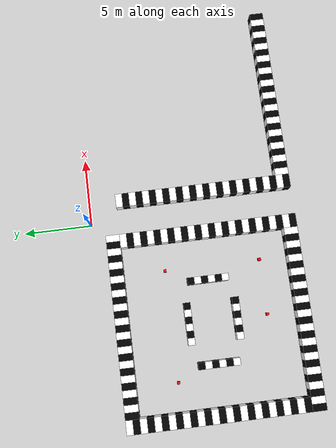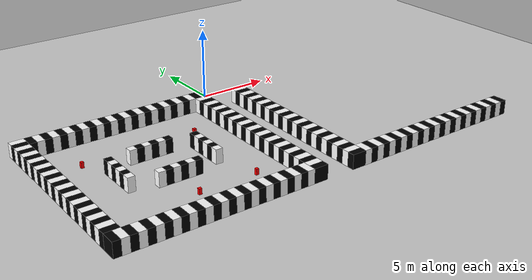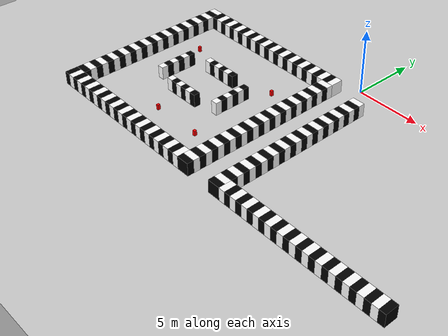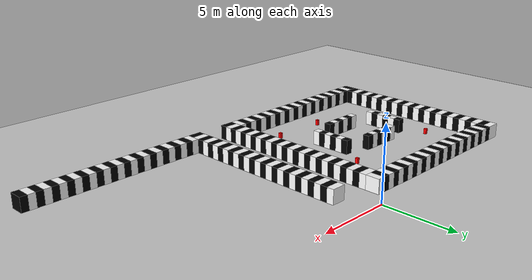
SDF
<sdf version="1.9">
 <world name="default">
  <model name="ground_plane">
   <static>true</static>
   <link name="link">
    <collision name="collision">
     <geometry><plane><normal>0 0 1</normal><size>100 100</size></plane></geometry>
    </collision>
    <visual name="visual">
     <geometry><plane><normal>0 0 1</normal><size>100 100</size></plane></geometry>
     <material>
      <ambient>0.8 0.8 0.8 1</ambient>
      <diffuse>0.8 0.8 0.8 1</diffuse>
      <specular>0.8 0.8 0.8 1</specular>
     </material>
    </visual>
   </link>
  </model>
  <model name="env1wall1">
   <static>true</static>
   <link name="link">
    <collision name="collision1">
     <geometry>
      <polyline>
       <point>-2 -2</point>
       <point>-1 -2</point>
       <point>-1 -15</point>
       <point>-2 -15</point>
       <height>1</height>
      </polyline>
     </geometry>
    </collision>
    <visual name="s1">
     <pose>-1.5 -2.25 0.5 0 0 0</pose>
     <geometry><box><size>1 0.5 1</size></box></geometry>
     <material><ambient>1 1 1 1</ambient><diffuse>1 1 1 1</diffuse></material>
    </visual>
    <visual name="s2">
     <pose>-1.5 -2.75 0.5 0 0 0</pose>
     <geometry><box><size>1 0.5 1</size></box></geometry>
     <material><ambient>0 0 0 1</ambient><diffuse>0 0 0 1</diffuse></material>
    </visual>
    <visual name="s3">
     <pose>-1.5 -3.25 0.5 0 0 0</pose>
     <geometry><box><size>1 0.5 1</size></box></geometry>
     <material><ambient>1 1 1 1</ambient><diffuse>1 1 1 1</diffuse></material>
    </visual>
    <visual name="s4">
     <pose>-1.5 -3.75 0.5 0 0 0</pose>
     <geometry><box><size>1 0.5 1</size></box></geometry>
     <material><ambient>0 0 0 1</ambient><diffuse>0 0 0 1</diffuse></material>
    </visual>
    <visual name="s5">
     <pose>-1.5 -4.25 0.5 0 0 0</pose>
     <geometry><box><size>1 0.5 1</size></box></geometry>
     <material><ambient>1 1 1 1</ambient><diffuse>1 1 1 1</diffuse></material>
    </visual>
    <visual name="s6">
     <pose>-1.5 -4.75 0.5 0 0 0</pose>
     <geometry><box><size>1 0.5 1</size></box></geometry>
     <material><ambient>0 0 0 1</ambient><diffuse>0 0 0 1</diffuse></material>
    </visual>
    <visual name="s7">
     <pose>-1.5 -5.25 0.5 0 0 0</pose>
     <geometry><box><size>1 0.5 1</size></box></geometry>
     <material><ambient>1 1 1 1</ambient><diffuse>1 1 1 1</diffuse></material>
    </visual>
    <visual name="s8">
     <pose>-1.5 -5.75 0.5 0 0 0</pose>
     <geometry><box><size>1 0.5 1</size></box></geometry>
     <material><ambient>0 0 0 1</ambient><diffuse>0 0 0 1</diffuse></material>
    </visual>
    <visual name="s9">
     <pose>-1.5 -6.25 0.5 0 0 0</pose>
     <geometry><box><size>1 0.5 1</size></box></geometry>
     <material><ambient>1 1 1 1</ambient><diffuse>1 1 1 1</diffuse></material>
    </visual>
    <visual name="s10">
     <pose>-1.5 -6.75 0.5 0 0 0</pose>
     <geometry><box><size>1 0.5 1</size></box></geometry>
     <material><ambient>0 0 0 1</ambient><diffuse>0 0 0 1</diffuse></material>
    </visual>
    <visual name="s11">
     <pose>-1.5 -7.25 0.5 0 0 0</pose>
     <geometry><box><size>1 0.5 1</size></box></geometry>
     <material><ambient>1 1 1 1</ambient><diffuse>1 1 1 1</diffuse></material>
    </visual>
    <visual name="s12">
     <pose>-1.5 -7.75 0.5 0 0 0</pose>
     <geometry><box><size>1 0.5 1</size></box></geometry>
     <material><ambient>0 0 0 1</ambient><diffuse>0 0 0 1</diffuse></material>
    </visual>
    <visual name="s13">
     <pose>-1.5 -8.25 0.5 0 0 0</pose>
     <geometry><box><size>1 0.5 1</size></box></geometry>
     <material><ambient>1 1 1 1</ambient><diffuse>1 1 1 1</diffuse></material>
    </visual>
    <visual name="s14">
     <pose>-1.5 -8.75 0.5 0 0 0</pose>
     <geometry><box><size>1 0.5 1</size></box></geometry>
     <material><ambient>0 0 0 1</ambient><diffuse>0 0 0 1</diffuse></material>
    </visual>
    <visual name="s15">
     <pose>-1.5 -9.25 0.5 0 0 0</pose>
     <geometry><box><size>1 0.5 1</size></box></geometry>
     <material><ambient>1 1 1 1</ambient><diffuse>1 1 1 1</diffuse></material>
    </visual>
    <visual name="s16">
     <pose>-1.5 -9.75 0.5 0 0 0</pose>
     <geometry><box><size>1 0.5 1</size></box></geometry>
     <material><ambient>0 0 0 1</ambient><diffuse>0 0 0 1</diffuse></material>
    </visual>
    <visual name="s17">
     <pose>-1.5 -10.25 0.5 0 0 0</pose>
     <geometry><box><size>1 0.5 1</size></box></geometry>
     <material><ambient>1 1 1 1</ambient><diffuse>1 1 1 1</diffuse></material>
    </visual>
    <visual name="s18">
     <pose>-1.5 -10.75 0.5 0 0 0</pose>
     <geometry><box><size>1 0.5 1</size></box></geometry>
     <material><ambient>0 0 0 1</ambient><diffuse>0 0 0 1</diffuse></material>
    </visual>
    <visual name="s19">
     <pose>-1.5 -11.25 0.5 0 0 0</pose>
     <geometry><box><size>1 0.5 1</size></box></geometry>
     <material><ambient>1 1 1 1</ambient><diffuse>1 1 1 1</diffuse></material>
    </visual>
    <visual name="s20">
     <pose>-1.5 -11.75 0.5 0 0 0</pose>
     <geometry><box><size>1 0.5 1</size></box></geometry>
     <material><ambient>0 0 0 1</ambient><diffuse>0 0 0 1</diffuse></material>
    </visual>
    <visual name="s21">
     <pose>-1.5 -12.25 0.5 0 0 0</pose>
     <geometry><box><size>1 0.5 1</size></box></geometry>
     <material><ambient>1 1 1 1</ambient><diffuse>1 1 1 1</diffuse></material>
    </visual>
    <visual name="s22">
     <pose>-1.5 -12.75 0.5 0 0 0</pose>
     <geometry><box><size>1 0.5 1</size></box></geometry>
     <material><ambient>0 0 0 1</ambient><diffuse>0 0 0 1</diffuse></material>
    </visual>
    <visual name="s23">
     <pose>-1.5 -13.25 0.5 0 0 0</pose>
     <geometry><box><size>1 0.5 1</size></box></geometry>
     <material><ambient>1 1 1 1</ambient><diffuse>1 1 1 1</diffuse></material>
    </visual>
    <visual name="s24">
     <pose>-1.5 -13.75 0.5 0 0 0</pose>
     <geometry><box><size>1 0.5 1</size></box></geometry>
     <material><ambient>0 0 0 1</ambient><diffuse>0 0 0 1</diffuse></material>
    </visual>
    <visual name="s25">
     <pose>-1.5 -14.25 0.5 0 0 0</pose>
     <geometry><box><size>1 0.5 1</size></box></geometry>
     <material><ambient>1 1 1 1</ambient><diffuse>1 1 1 1</diffuse></material>
    </visual>
    <visual name="s26">
     <pose>-1.5 -14.75 0.5 0 0 0</pose>
     <geometry><box><size>1 0.5 1</size></box></geometry>
     <material><ambient>0 0 0 1</ambient><diffuse>0 0 0 1</diffuse></material>
    </visual>
   </link>
  </model>
  <model name="env1wall2">
   <static>true</static>
   <link name="link">
    <collision name="collision1">
     <geometry>
      <polyline>
       <point>-2 -14</point>
       <point>-2 -15</point>
       <point>-15 -15</point>
       <point>-15 -14</point>
       <height>1</height>
      </polyline>
     </geometry>
    </collision>
    <visual name="s1">
     <pose>-2.25 -14.5 0.5 0 0 0</pose>
     <geometry><box><size>0.5 1 1</size></box></geometry>
     <material><ambient>1 1 1 1</ambient><diffuse>1 1 1 1</diffuse></material>
    </visual>
    <visual name="s2">
     <pose>-2.75 -14.5 0.5 0 0 0</pose>
     <geometry><box><size>0.5 1 1</size></box></geometry>
     <material><ambient>0 0 0 1</ambient><diffuse>0 0 0 1</diffuse></material>
    </visual>
    <visual name="s3">
     <pose>-3.25 -14.5 0.5 0 0 0</pose>
     <geometry><box><size>0.5 1 1</size></box></geometry>
     <material><ambient>1 1 1 1</ambient><diffuse>1 1 1 1</diffuse></material>
    </visual>
    <visual name="s4">
     <pose>-3.75 -14.5 0.5 0 0 0</pose>
     <geometry><box><size>0.5 1 1</size></box></geometry>
     <material><ambient>0 0 0 1</ambient><diffuse>0 0 0 1</diffuse></material>
    </visual>
    <visual name="s5">
     <pose>-4.25 -14.5 0.5 0 0 0</pose>
     <geometry><box><size>0.5 1 1</size></box></geometry>
     <material><ambient>1 1 1 1</ambient><diffuse>1 1 1 1</diffuse></material>
    </visual>
    <visual name="s6">
     <pose>-4.75 -14.5 0.5 0 0 0</pose>
     <geometry><box><size>0.5 1 1</size></box></geometry>
     <material><ambient>0 0 0 1</ambient><diffuse>0 0 0 1</diffuse></material>
    </visual>
    <visual name="s7">
     <pose>-5.25 -14.5 0.5 0 0 0</pose>
     <geometry><box><size>0.5 1 1</size></box></geometry>
     <material><ambient>1 1 1 1</ambient><diffuse>1 1 1 1</diffuse></material>
    </visual>
    <visual name="s8">
     <pose>-5.75 -14.5 0.5 0 0 0</pose>
     <geometry><box><size>0.5 1 1</size></box></geometry>
     <material><ambient>0 0 0 1</ambient><diffuse>0 0 0 1</diffuse></material>
    </visual>
    <visual name="s9">
     <pose>-6.25 -14.5 0.5 0 0 0</pose>
     <geometry><box><size>0.5 1 1</size></box></geometry>
     <material><ambient>1 1 1 1</ambient><diffuse>1 1 1 1</diffuse></material>
    </visual>
    <visual name="s10">
     <pose>-6.75 -14.5 0.5 0 0 0</pose>
     <geometry><box><size>0.5 1 1</size></box></geometry>
     <material><ambient>0 0 0 1</ambient><diffuse>0 0 0 1</diffuse></material>
    </visual>
    <visual name="s11">
     <pose>-7.25 -14.5 0.5 0 0 0</pose>
     <geometry><box><size>0.5 1 1</size></box></geometry>
     <material><ambient>1 1 1 1</ambient><diffuse>1 1 1 1</diffuse></material>
    </visual>
    <visual name="s12">
     <pose>-7.75 -14.5 0.5 0 0 0</pose>
     <geometry><box><size>0.5 1 1</size></box></geometry>
     <material><ambient>0 0 0 1</ambient><diffuse>0 0 0 1</diffuse></material>
    </visual>
    <visual name="s13">
     <pose>-8.25 -14.5 0.5 0 0 0</pose>
     <geometry><box><size>0.5 1 1</size></box></geometry>
     <material><ambient>1 1 1 1</ambient><diffuse>1 1 1 1</diffuse></material>
    </visual>
    <visual name="s14">
     <pose>-8.75 -14.5 0.5 0 0 0</pose>
     <geometry><box><size>0.5 1 1</size></box></geometry>
     <material><ambient>0 0 0 1</ambient><diffuse>0 0 0 1</diffuse></material>
    </visual>
    <visual name="s15">
     <pose>-9.25 -14.5 0.5 0 0 0</pose>
     <geometry><box><size>0.5 1 1</size></box></geometry>
     <material><ambient>1 1 1 1</ambient><diffuse>1 1 1 1</diffuse></material>
    </visual>
    <visual name="s16">
     <pose>-9.75 -14.5 0.5 0 0 0</pose>
     <geometry><box><size>0.5 1 1</size></box></geometry>
     <material><ambient>0 0 0 1</ambient><diffuse>0 0 0 1</diffuse></material>
    </visual>
    <visual name="s17">
     <pose>-10.25 -14.5 0.5 0 0 0</pose>
     <geometry><box><size>0.5 1 1</size></box></geometry>
     <material><ambient>1 1 1 1</ambient><diffuse>1 1 1 1</diffuse></material>
    </visual>
    <visual name="s18">
     <pose>-10.75 -14.5 0.5 0 0 0</pose>
     <geometry><box><size>0.5 1 1</size></box></geometry>
     <material><ambient>0 0 0 1</ambient><diffuse>0 0 0 1</diffuse></material>
    </visual>
    <visual name="s19">
     <pose>-11.25 -14.5 0.5 0 0 0</pose>
     <geometry><box><size>0.5 1 1</size></box></geometry>
     <material><ambient>1 1 1 1</ambient><diffuse>1 1 1 1</diffuse></material>
    </visual>
    <visual name="s20">
     <pose>-11.75 -14.5 0.5 0 0 0</pose>
     <geometry><box><size>0.5 1 1</size></box></geometry>
     <material><ambient>0 0 0 1</ambient><diffuse>0 0 0 1</diffuse></material>
    </visual>
    <visual name="s21">
     <pose>-12.25 -14.5 0.5 0 0 0</pose>
     <geometry><box><size>0.5 1 1</size></box></geometry>
     <material><ambient>1 1 1 1</ambient><diffuse>1 1 1 1</diffuse></material>
    </visual>
    <visual name="s22">
     <pose>-12.75 -14.5 0.5 0 0 0</pose>
     <geometry><box><size>0.5 1 1</size></box></geometry>
     <material><ambient>0 0 0 1</ambient><diffuse>0 0 0 1</diffuse></material>
    </visual>
    <visual name="s23">
     <pose>-13.25 -14.5 0.5 0 0 0</pose>
     <geometry><box><size>0.5 1 1</size></box></geometry>
     <material><ambient>1 1 1 1</ambient><diffuse>1 1 1 1</diffuse></material>
    </visual>
    <visual name="s24">
     <pose>-13.75 -14.5 0.5 0 0 0</pose>
     <geometry><box><size>0.5 1 1</size></box></geometry>
     <material><ambient>0 0 0 1</ambient><diffuse>0 0 0 1</diffuse></material>
    </visual>
    <visual name="s25">
     <pose>-14.25 -14.5 0.5 0 0 0</pose>
     <geometry><box><size>0.5 1 1</size></box></geometry>
     <material><ambient>1 1 1 1</ambient><diffuse>1 1 1 1</diffuse></material>
    </visual>
    <visual name="s26">
     <pose>-14.75 -14.5 0.5 0 0 0</pose>
     <geometry><box><size>0.5 1 1</size></box></geometry>
     <material><ambient>0 0 0 1</ambient><diffuse>0 0 0 1</diffuse></material>
    </visual>
   </link>
  </model>
  <model name="env1wall3">
   <static>true</static>
   <link name="link">
    <collision name="collision1">
     <geometry>
      <polyline>
       <point>-14 -1</point>
       <point>-14 -14</point>
       <point>-15 -14</point>
       <point>-15 -1</point>
       <height>1</height>
      </polyline>
     </geometry>
    </collision>
    <visual name="s1">
     <pose>-14.5 -1.25 0.5 0 0 0</pose>
     <geometry><box><size>1 0.5 1</size></box></geometry>
     <material><ambient>1 1 1 1</ambient><diffuse>1 1 1 1</diffuse></material>
    </visual>
    <visual name="s2">
     <pose>-14.5 -1.75 0.5 0 0 0</pose>
     <geometry><box><size>1 0.5 1</size></box></geometry>
     <material><ambient>0 0 0 1</ambient><diffuse>0 0 0 1</diffuse></material>
    </visual>
    <visual name="s3">
     <pose>-14.5 -2.25 0.5 0 0 0</pose>
     <geometry><box><size>1 0.5 1</size></box></geometry>
     <material><ambient>1 1 1 1</ambient><diffuse>1 1 1 1</diffuse></material>
    </visual>
    <visual name="s4">
     <pose>-14.5 -2.75 0.5 0 0 0</pose>
     <geometry><box><size>1 0.5 1</size></box></geometry>
     <material><ambient>0 0 0 1</ambient><diffuse>0 0 0 1</diffuse></material>
    </visual>
    <visual name="s5">
     <pose>-14.5 -3.25 0.5 0 0 0</pose>
     <geometry><box><size>1 0.5 1</size></box></geometry>
     <material><ambient>1 1 1 1</ambient><diffuse>1 1 1 1</diffuse></material>
    </visual>
    <visual name="s6">
     <pose>-14.5 -3.75 0.5 0 0 0</pose>
     <geometry><box><size>1 0.5 1</size></box></geometry>
     <material><ambient>0 0 0 1</ambient><diffuse>0 0 0 1</diffuse></material>
    </visual>
    <visual name="s7">
     <pose>-14.5 -4.25 0.5 0 0 0</pose>
     <geometry><box><size>1 0.5 1</size></box></geometry>
     <material><ambient>1 1 1 1</ambient><diffuse>1 1 1 1</diffuse></material>
    </visual>
    <visual name="s8">
     <pose>-14.5 -4.75 0.5 0 0 0</pose>
     <geometry><box><size>1 0.5 1</size></box></geometry>
     <material><ambient>0 0 0 1</ambient><diffuse>0 0 0 1</diffuse></material>
    </visual>
    <visual name="s9">
     <pose>-14.5 -5.25 0.5 0 0 0</pose>
     <geometry><box><size>1 0.5 1</size></box></geometry>
     <material><ambient>1 1 1 1</ambient><diffuse>1 1 1 1</diffuse></material>
    </visual>
    <visual name="s10">
     <pose>-14.5 -5.75 0.5 0 0 0</pose>
     <geometry><box><size>1 0.5 1</size></box></geometry>
     <material><ambient>0 0 0 1</ambient><diffuse>0 0 0 1</diffuse></material>
    </visual>
    <visual name="s11">
     <pose>-14.5 -6.25 0.5 0 0 0</pose>
     <geometry><box><size>1 0.5 1</size></box></geometry>
     <material><ambient>1 1 1 1</ambient><diffuse>1 1 1 1</diffuse></material>
    </visual>
    <visual name="s12">
     <pose>-14.5 -6.75 0.5 0 0 0</pose>
     <geometry><box><size>1 0.5 1</size></box></geometry>
     <material><ambient>0 0 0 1</ambient><diffuse>0 0 0 1</diffuse></material>
    </visual>
    <visual name="s13">
     <pose>-14.5 -7.25 0.5 0 0 0</pose>
     <geometry><box><size>1 0.5 1</size></box></geometry>
     <material><ambient>1 1 1 1</ambient><diffuse>1 1 1 1</diffuse></material>
    </visual>
    <visual name="s14">
     <pose>-14.5 -7.75 0.5 0 0 0</pose>
     <geometry><box><size>1 0.5 1</size></box></geometry>
     <material><ambient>0 0 0 1</ambient><diffuse>0 0 0 1</diffuse></material>
    </visual>
    <visual name="s15">
     <pose>-14.5 -8.25 0.5 0 0 0</pose>
     <geometry><box><size>1 0.5 1</size></box></geometry>
     <material><ambient>1 1 1 1</ambient><diffuse>1 1 1 1</diffuse></material>
    </visual>
    <visual name="s16">
     <pose>-14.5 -8.75 0.5 0 0 0</pose>
     <geometry><box><size>1 0.5 1</size></box></geometry>
     <material><ambient>0 0 0 1</ambient><diffuse>0 0 0 1</diffuse></material>
    </visual>
    <visual name="s17">
     <pose>-14.5 -9.25 0.5 0 0 0</pose>
     <geometry><box><size>1 0.5 1</size></box></geometry>
     <material><ambient>1 1 1 1</ambient><diffuse>1 1 1 1</diffuse></material>
    </visual>
    <visual name="s18">
     <pose>-14.5 -9.75 0.5 0 0 0</pose>
     <geometry><box><size>1 0.5 1</size></box></geometry>
     <material><ambient>0 0 0 1</ambient><diffuse>0 0 0 1</diffuse></material>
    </visual>
    <visual name="s19">
     <pose>-14.5 -10.25 0.5 0 0 0</pose>
     <geometry><box><size>1 0.5 1</size></box></geometry>
     <material><ambient>1 1 1 1</ambient><diffuse>1 1 1 1</diffuse></material>
    </visual>
    <visual name="s20">
     <pose>-14.5 -10.75 0.5 0 0 0</pose>
     <geometry><box><size>1 0.5 1</size></box></geometry>
     <material><ambient>0 0 0 1</ambient><diffuse>0 0 0 1</diffuse></material>
    </visual>
    <visual name="s21">
     <pose>-14.5 -11.25 0.5 0 0 0</pose>
     <geometry><box><size>1 0.5 1</size></box></geometry>
     <material><ambient>1 1 1 1</ambient><diffuse>1 1 1 1</diffuse></material>
    </visual>
    <visual name="s22">
     <pose>-14.5 -11.75 0.5 0 0 0</pose>
     <geometry><box><size>1 0.5 1</size></box></geometry>
     <material><ambient>0 0 0 1</ambient><diffuse>0 0 0 1</diffuse></material>
    </visual>
    <visual name="s23">
     <pose>-14.5 -12.25 0.5 0 0 0</pose>
     <geometry><box><size>1 0.5 1</size></box></geometry>
     <material><ambient>1 1 1 1</ambient><diffuse>1 1 1 1</diffuse></material>
    </visual>
    <visual name="s24">
     <pose>-14.5 -12.75 0.5 0 0 0</pose>
     <geometry><box><size>1 0.5 1</size></box></geometry>
     <material><ambient>0 0 0 1</ambient><diffuse>0 0 0 1</diffuse></material>
    </visual>
    <visual name="s25">
     <pose>-14.5 -13.25 0.5 0 0 0</pose>
     <geometry><box><size>1 0.5 1</size></box></geometry>
     <material><ambient>1 1 1 1</ambient><diffuse>1 1 1 1</diffuse></material>
    </visual>
    <visual name="s26">
     <pose>-14.5 -13.75 0.5 0 0 0</pose>
     <geometry><box><size>1 0.5 1</size></box></geometry>
     <material><ambient>0 0 0 1</ambient><diffuse>0 0 0 1</diffuse></material>
    </visual>
   </link>
  </model>
  <model name="env1wall4">
   <static>true</static>
   <link name="link">
    <collision name="collision1">
     <geometry>
      <polyline>
       <point>-1 -1</point>
       <point>-1 -2</point>
       <point>-14 -2</point>
       <point>-14 -1</point>
       <height>1</height>
      </polyline>
     </geometry>
    </collision>
    <visual name="s1">
     <pose>-1.25 -1.5 0.5 0 0 0</pose>
     <geometry><box><size>0.5 1 1</size></box></geometry>
     <material><ambient>1 1 1 1</ambient><diffuse>1 1 1 1</diffuse></material>
    </visual>
    <visual name="s2">
     <pose>-1.75 -1.5 0.5 0 0 0</pose>
     <geometry><box><size>0.5 1 1</size></box></geometry>
     <material><ambient>0 0 0 1</ambient><diffuse>0 0 0 1</diffuse></material>
    </visual>
    <visual name="s3">
     <pose>-2.25 -1.5 0.5 0 0 0</pose>
     <geometry><box><size>0.5 1 1</size></box></geometry>
     <material><ambient>1 1 1 1</ambient><diffuse>1 1 1 1</diffuse></material>
    </visual>
    <visual name="s4">
     <pose>-2.75 -1.5 0.5 0 0 0</pose>
     <geometry><box><size>0.5 1 1</size></box></geometry>
     <material><ambient>0 0 0 1</ambient><diffuse>0 0 0 1</diffuse></material>
    </visual>
    <visual name="s5">
     <pose>-3.25 -1.5 0.5 0 0 0</pose>
     <geometry><box><size>0.5 1 1</size></box></geometry>
     <material><ambient>1 1 1 1</ambient><diffuse>1 1 1 1</diffuse></material>
    </visual>
    <visual name="s6">
     <pose>-3.75 -1.5 0.5 0 0 0</pose>
     <geometry><box><size>0.5 1 1</size></box></geometry>
     <material><ambient>0 0 0 1</ambient><diffuse>0 0 0 1</diffuse></material>
    </visual>
    <visual name="s7">
     <pose>-4.25 -1.5 0.5 0 0 0</pose>
     <geometry><box><size>0.5 1 1</size></box></geometry>
     <material><ambient>1 1 1 1</ambient><diffuse>1 1 1 1</diffuse></material>
    </visual>
    <visual name="s8">
     <pose>-4.75 -1.5 0.5 0 0 0</pose>
     <geometry><box><size>0.5 1 1</size></box></geometry>
     <material><ambient>0 0 0 1</ambient><diffuse>0 0 0 1</diffuse></material>
    </visual>
    <visual name="s9">
     <pose>-5.25 -1.5 0.5 0 0 0</pose>
     <geometry><box><size>0.5 1 1</size></box></geometry>
     <material><ambient>1 1 1 1</ambient><diffuse>1 1 1 1</diffuse></material>
    </visual>
    <visual name="s10">
     <pose>-5.75 -1.5 0.5 0 0 0</pose>
     <geometry><box><size>0.5 1 1</size></box></geometry>
     <material><ambient>0 0 0 1</ambient><diffuse>0 0 0 1</diffuse></material>
    </visual>
    <visual name="s11">
     <pose>-6.25 -1.5 0.5 0 0 0</pose>
     <geometry><box><size>0.5 1 1</size></box></geometry>
     <material><ambient>1 1 1 1</ambient><diffuse>1 1 1 1</diffuse></material>
    </visual>
    <visual name="s12">
     <pose>-6.75 -1.5 0.5 0 0 0</pose>
     <geometry><box><size>0.5 1 1</size></box></geometry>
     <material><ambient>0 0 0 1</ambient><diffuse>0 0 0 1</diffuse></material>
    </visual>
    <visual name="s13">
     <pose>-7.25 -1.5 0.5 0 0 0</pose>
     <geometry><box><size>0.5 1 1</size></box></geometry>
     <material><ambient>1 1 1 1</ambient><diffuse>1 1 1 1</diffuse></material>
    </visual>
    <visual name="s14">
     <pose>-7.75 -1.5 0.5 0 0 0</pose>
     <geometry><box><size>0.5 1 1</size></box></geometry>
     <material><ambient>0 0 0 1</ambient><diffuse>0 0 0 1</diffuse></material>
    </visual>
    <visual name="s15">
     <pose>-8.25 -1.5 0.5 0 0 0</pose>
     <geometry><box><size>0.5 1 1</size></box></geometry>
     <material><ambient>1 1 1 1</ambient><diffuse>1 1 1 1</diffuse></material>
    </visual>
    <visual name="s16">
     <pose>-8.75 -1.5 0.5 0 0 0</pose>
     <geometry><box><size>0.5 1 1</size></box></geometry>
     <material><ambient>0 0 0 1</ambient><diffuse>0 0 0 1</diffuse></material>
    </visual>
    <visual name="s17">
     <pose>-9.25 -1.5 0.5 0 0 0</pose>
     <geometry><box><size>0.5 1 1</size></box></geometry>
     <material><ambient>1 1 1 1</ambient><diffuse>1 1 1 1</diffuse></material>
    </visual>
    <visual name="s18">
     <pose>-9.75 -1.5 0.5 0 0 0</pose>
     <geometry><box><size>0.5 1 1</size></box></geometry>
     <material><ambient>0 0 0 1</ambient><diffuse>0 0 0 1</diffuse></material>
    </visual>
    <visual name="s19">
     <pose>-10.25 -1.5 0.5 0 0 0</pose>
     <geometry><box><size>0.5 1 1</size></box></geometry>
     <material><ambient>1 1 1 1</ambient><diffuse>1 1 1 1</diffuse></material>
    </visual>
    <visual name="s20">
     <pose>-10.75 -1.5 0.5 0 0 0</pose>
     <geometry><box><size>0.5 1 1</size></box></geometry>
     <material><ambient>0 0 0 1</ambient><diffuse>0 0 0 1</diffuse></material>
    </visual>
    <visual name="s21">
     <pose>-11.25 -1.5 0.5 0 0 0</pose>
     <geometry><box><size>0.5 1 1</size></box></geometry>
     <material><ambient>1 1 1 1</ambient><diffuse>1 1 1 1</diffuse></material>
    </visual>
    <visual name="s22">
     <pose>-11.75 -1.5 0.5 0 0 0</pose>
     <geometry><box><size>0.5 1 1</size></box></geometry>
     <material><ambient>0 0 0 1</ambient><diffuse>0 0 0 1</diffuse></material>
    </visual>
    <visual name="s23">
     <pose>-12.25 -1.5 0.5 0 0 0</pose>
     <geometry><box><size>0.5 1 1</size></box></geometry>
     <material><ambient>1 1 1 1</ambient><diffuse>1 1 1 1</diffuse></material>
    </visual>
    <visual name="s24">
     <pose>-12.75 -1.5 0.5 0 0 0</pose>
     <geometry><box><size>0.5 1 1</size></box></geometry>
     <material><ambient>0 0 0 1</ambient><diffuse>0 0 0 1</diffuse></material>
    </visual>
    <visual name="s25">
     <pose>-13.25 -1.5 0.5 0 0 0</pose>
     <geometry><box><size>0.5 1 1</size></box></geometry>
     <material><ambient>1 1 1 1</ambient><diffuse>1 1 1 1</diffuse></material>
    </visual>
    <visual name="s26">
     <pose>-13.75 -1.5 0.5 0 0 0</pose>
     <geometry><box><size>0.5 1 1</size></box></geometry>
     <material><ambient>0 0 0 1</ambient><diffuse>0 0 0 1</diffuse></material>
    </visual>
   </link>
  </model>
  <model name="env1obs1">
   <static>true</static>
   <link name="link">
    <collision name="collision1">
     <geometry>
      <polyline>
       <point>-6.5 -6.5</point>
       <point>-6.5 -6</point>
       <point>-9.5 -6</point>
       <point>-9.5 -6.5</point>
       <height>1</height>
      </polyline>
     </geometry>
    </collision>
    <visual name="s1">
     <pose>-9.25 -6.25 0.5 0 0 0</pose>
     <geometry><box><size>0.5 0.5 1</size></box></geometry>
     <material><ambient>1 1 1 1</ambient><diffuse>1 1 1 1</diffuse></material>
    </visual>
    <visual name="s2">
     <pose>-8.75 -6.25 0.5 0 0 0</pose>
     <geometry><box><size>0.5 0.5 1</size></box></geometry>
     <material><ambient>0 0 0 1</ambient><diffuse>0 0 0 1</diffuse></material>
    </visual>
    <visual name="s3">
     <pose>-8.25 -6.25 0.5 0 0 0</pose>
     <geometry><box><size>0.5 0.5 1</size></box></geometry>
     <material><ambient>1 1 1 1</ambient><diffuse>1 1 1 1</diffuse></material>
    </visual>
    <visual name="s4">
     <pose>-7.75 -6.25 0.5 0 0 0</pose>
     <geometry><box><size>0.5 0.5 1</size></box></geometry>
     <material><ambient>0 0 0 1</ambient><diffuse>0 0 0 1</diffuse></material>
    </visual>
    <visual name="s5">
     <pose>-7.25 -6.25 0.5 0 0 0</pose>
     <geometry><box><size>0.5 0.5 1</size></box></geometry>
     <material><ambient>1 1 1 1</ambient><diffuse>1 1 1 1</diffuse></material>
    </visual>
    <visual name="s6">
     <pose>-6.75 -6.25 0.5 0 0 0</pose>
     <geometry><box><size>0.5 0.5 1</size></box></geometry>
     <material><ambient>0 0 0 1</ambient><diffuse>0 0 0 1</diffuse></material>
    </visual>
   </link>
  </model>
  <model name="env1obs2">
   <static>true</static>
   <link name="link">
    <collision name="collision1">
     <geometry>
      <polyline>
       <point>-6.5 -9.5</point>
       <point>-6.5 -10</point>
       <point>-9.5 -10</point>
       <point>-9.5 -9.5</point>
       <height>1</height>
      </polyline>
     </geometry>
    </collision>
    <visual name="s1">
     <pose>-9.25 -9.75 0.5 0 0 0</pose>
     <geometry><box><size>0.5 0.5 1</size></box></geometry>
     <material><ambient>1 1 1 1</ambient><diffuse>1 1 1 1</diffuse></material>
    </visual>
    <visual name="s2">
     <pose>-8.75 -9.75 0.5 0 0 0</pose>
     <geometry><box><size>0.5 0.5 1</size></box></geometry>
     <material><ambient>0 0 0 1</ambient><diffuse>0 0 0 1</diffuse></material>
    </visual>
    <visual name="s3">
     <pose>-8.25 -9.75 0.5 0 0 0</pose>
     <geometry><box><size>0.5 0.5 1</size></box></geometry>
     <material><ambient>1 1 1 1</ambient><diffuse>1 1 1 1</diffuse></material>
    </visual>
    <visual name="s4">
     <pose>-7.75 -9.75 0.5 0 0 0</pose>
     <geometry><box><size>0.5 0.5 1</size></box></geometry>
     <material><ambient>0 0 0 1</ambient><diffuse>0 0 0 1</diffuse></material>
    </visual>
    <visual name="s5">
     <pose>-7.25 -9.75 0.5 0 0 0</pose>
     <geometry><box><size>0.5 0.5 1</size></box></geometry>
     <material><ambient>1 1 1 1</ambient><diffuse>1 1 1 1</diffuse></material>
    </visual>
    <visual name="s6">
     <pose>-6.75 -9.75 0.5 0 0 0</pose>
     <geometry><box><size>0.5 0.5 1</size></box></geometry>
     <material><ambient>0 0 0 1</ambient><diffuse>0 0 0 1</diffuse></material>
    </visual>
   </link>
  </model>
  <model name="env1obs3">
   <static>true</static>
   <link name="link">
    <collision name="collision1">
     <geometry>
      <polyline>
       <point>-5.25 -6.5</point>
       <point>-4.75 -6.5</point>
       <point>-4.75 -9.5</point>
       <point>-5.25 -9.5</point>
       <height>1</height>
      </polyline>
     </geometry>
    </collision>
    <visual name="s1">
     <pose>-5 -9.25 0.5 0 0 0</pose>
     <geometry><box><size>0.5 0.5 1</size></box></geometry>
     <material><ambient>1 1 1 1</ambient><diffuse>1 1 1 1</diffuse></material>
    </visual>
    <visual name="s2">
     <pose>-5 -8.75 0.5 0 0 0</pose>
     <geometry><box><size>0.5 0.5 1</size></box></geometry>
     <material><ambient>0 0 0 1</ambient><diffuse>0 0 0 1</diffuse></material>
    </visual>
    <visual name="s3">
     <pose>-5 -8.25 0.5 0 0 0</pose>
     <geometry><box><size>0.5 0.5 1</size></box></geometry>
     <material><ambient>1 1 1 1</ambient><diffuse>1 1 1 1</diffuse></material>
    </visual>
    <visual name="s4">
     <pose>-5 -7.75 0.5 0 0 0</pose>
     <geometry><box><size>0.5 0.5 1</size></box></geometry>
     <material><ambient>0 0 0 1</ambient><diffuse>0 0 0 1</diffuse></material>
    </visual>
    <visual name="s5">
     <pose>-5 -7.25 0.5 0 0 0</pose>
     <geometry><box><size>0.5 0.5 1</size></box></geometry>
     <material><ambient>1 1 1 1</ambient><diffuse>1 1 1 1</diffuse></material>
    </visual>
    <visual name="s6">
     <pose>-5 -6.75 0.5 0 0 0</pose>
     <geometry><box><size>0.5 0.5 1</size></box></geometry>
     <material><ambient>0 0 0 1</ambient><diffuse>0 0 0 1</diffuse></material>
    </visual>
   </link>
  </model>
  <model name="env1obs4">
   <static>true</static>
   <link name="link">
    <collision name="collision1">
     <geometry>
      <polyline>
       <point>-10.75 -6.5</point>
       <point>-11.25 -6.5</point>
       <point>-11.25 -9.5</point>
       <point>-10.75 -9.5</point>
       <height>1</height>
      </polyline>
     </geometry>
    </collision>
    <visual name="s1">
     <pose>-11 -9.25 0.5 0 0 0</pose>
     <geometry><box><size>0.5 0.5 1</size></box></geometry>
     <material><ambient>1 1 1 1</ambient><diffuse>1 1 1 1</diffuse></material>
    </visual>
    <visual name="s2">
     <pose>-11 -8.75 0.5 0 0 0</pose>
     <geometry><box><size>0.5 0.5 1</size></box></geometry>
     <material><ambient>0 0 0 1</ambient><diffuse>0 0 0 1</diffuse></material>
    </visual>
    <visual name="s3">
     <pose>-11 -8.25 0.5 0 0 0</pose>
     <geometry><box><size>0.5 0.5 1</size></box></geometry>
     <material><ambient>1 1 1 1</ambient><diffuse>1 1 1 1</diffuse></material>
    </visual>
    <visual name="s4">
     <pose>-11 -7.75 0.5 0 0 0</pose>
     <geometry><box><size>0.5 0.5 1</size></box></geometry>
     <material><ambient>0 0 0 1</ambient><diffuse>0 0 0 1</diffuse></material>
    </visual>
    <visual name="s5">
     <pose>-11 -7.25 0.5 0 0 0</pose>
     <geometry><box><size>0.5 0.5 1</size></box></geometry>
     <material><ambient>1 1 1 1</ambient><diffuse>1 1 1 1</diffuse></material>
    </visual>
    <visual name="s6">
     <pose>-11 -6.75 0.5 0 0 0</pose>
     <geometry><box><size>0.5 0.5 1</size></box></geometry>
     <material><ambient>0 0 0 1</ambient><diffuse>0 0 0 1</diffuse></material>
    </visual>
   </link>
  </model>
  <model name="env1_dyn1">
   <pose>-4 -5 0.2 0 0 0</pose>
   <link name="link">
    <collision name="collision"><geometry><box><size>0.2 0.2 0.4</size></box></geometry></collision>
    <visual name="visual">
     <geometry><box><size>0.2 0.2 0.4</size></box></geometry>
     <material><ambient>1 0 0 1</ambient><diffuse>1 0 0 1</diffuse></material>
    </visual>
   </link>
  </model>
  <model name="env1_dyn2">
   <pose>-12 -5 0.2 0 0 0</pose>
   <link name="link">
    <collision name="collision"><geometry><box><size>0.2 0.2 0.4</size></box></geometry></collision>
    <visual name="visual">
     <geometry><box><size>0.2 0.2 0.4</size></box></geometry>
     <material><ambient>1 0 0 1</ambient><diffuse>1 0 0 1</diffuse></material>
    </visual>
   </link>
  </model>
  <model name="env1_dyn3">
   <pose>-8 -12 0.2 0 0 0</pose>
   <link name="link">
    <collision name="collision"><geometry><box><size>0.2 0.2 0.4</size></box></geometry></collision>
    <visual name="visual">
     <geometry><box><size>0.2 0.2 0.4</size></box></geometry>
     <material><ambient>1 0 0 1</ambient><diffuse>1 0 0 1</diffuse></material>
    </visual>
   </link>
  </model>
  <model name="env1_dyn4">
   <pose>-4 -12 0.2 0 0 0</pose>
   <link name="link">
    <collision name="collision"><geometry><box><size>0.2 0.2 0.4</size></box></geometry></collision>
    <visual name="visual">
     <geometry><box><size>0.2 0.2 0.4</size></box></geometry>
     <material><ambient>1 0 0 1</ambient><diffuse>1 0 0 1</diffuse></material>
    </visual>
   </link>
  </model>
  <model name="env2wall1">
   <static>true</static>
   <link name="link">
    <collision name="collision1">
     <geometry>
      <polyline>
       <point>2 -2</point>
       <point>1 -2</point>
       <point>1 -15</point>
       <point>2 -15</point>
       <height>1</height>
      </polyline>
     </geometry>
    </collision>
    <visual name="s1">
     <pose>1.5 -2.25 0.5 0 0 0</pose>
     <geometry><box><size>1 0.5 1</size></box></geometry>
     <material><ambient>1 1 1 1</ambient><diffuse>1 1 1 1</diffuse></material>
    </visual>
    <visual name="s2">
     <pose>1.5 -2.75 0.5 0 0 0</pose>
     <geometry><box><size>1 0.5 1</size></box></geometry>
     <material><ambient>0 0 0 1</ambient><diffuse>0 0 0 1</diffuse></material>
    </visual>
    <visual name="s3">
     <pose>1.5 -3.25 0.5 0 0 0</pose>
     <geometry><box><size>1 0.5 1</size></box></geometry>
     <material><ambient>1 1 1 1</ambient><diffuse>1 1 1 1</diffuse></material>
    </visual>
    <visual name="s4">
     <pose>1.5 -3.75 0.5 0 0 0</pose>
     <geometry><box><size>1 0.5 1</size></box></geometry>
     <material><ambient>0 0 0 1</ambient><diffuse>0 0 0 1</diffuse></material>
    </visual>
    <visual name="s5">
     <pose>1.5 -4.25 0.5 0 0 0</pose>
     <geometry><box><size>1 0.5 1</size></box></geometry>
     <material><ambient>1 1 1 1</ambient><diffuse>1 1 1 1</diffuse></material>
    </visual>
    <visual name="s6">
     <pose>1.5 -4.75 0.5 0 0 0</pose>
     <geometry><box><size>1 0.5 1</size></box></geometry>
     <material><ambient>0 0 0 1</ambient><diffuse>0 0 0 1</diffuse></material>
    </visual>
    <visual name="s7">
     <pose>1.5 -5.25 0.5 0 0 0</pose>
     <geometry><box><size>1 0.5 1</size></box></geometry>
     <material><ambient>1 1 1 1</ambient><diffuse>1 1 1 1</diffuse></material>
    </visual>
    <visual name="s8">
     <pose>1.5 -5.75 0.5 0 0 0</pose>
     <geometry><box><size>1 0.5 1</size></box></geometry>
     <material><ambient>0 0 0 1</ambient><diffuse>0 0 0 1</diffuse></material>
    </visual>
    <visual name="s9">
     <pose>1.5 -6.25 0.5 0 0 0</pose>
     <geometry><box><size>1 0.5 1</size></box></geometry>
     <material><ambient>1 1 1 1</ambient><diffuse>1 1 1 1</diffuse></material>
    </visual>
    <visual name="s10">
     <pose>1.5 -6.75 0.5 0 0 0</pose>
     <geometry><box><size>1 0.5 1</size></box></geometry>
     <material><ambient>0 0 0 1</ambient><diffuse>0 0 0 1</diffuse></material>
    </visual>
    <visual name="s11">
     <pose>1.5 -7.25 0.5 0 0 0</pose>
     <geometry><box><size>1 0.5 1</size></box></geometry>
     <material><ambient>1 1 1 1</ambient><diffuse>1 1 1 1</diffuse></material>
    </visual>
    <visual name="s12">
     <pose>1.5 -7.75 0.5 0 0 0</pose>
     <geometry><box><size>1 0.5 1</size></box></geometry>
     <material><ambient>0 0 0 1</ambient><diffuse>0 0 0 1</diffuse></material>
    </visual>
    <visual name="s13">
     <pose>1.5 -8.25 0.5 0 0 0</pose>
     <geometry><box><size>1 0.5 1</size></box></geometry>
     <material><ambient>1 1 1 1</ambient><diffuse>1 1 1 1</diffuse></material>
    </visual>
    <visual name="s14">
     <pose>1.5 -8.75 0.5 0 0 0</pose>
     <geometry><box><size>1 0.5 1</size></box></geometry>
     <material><ambient>0 0 0 1</ambient><diffuse>0 0 0 1</diffuse></material>
    </visual>
    <visual name="s15">
     <pose>1.5 -9.25 0.5 0 0 0</pose>
     <geometry><box><size>1 0.5 1</size></box></geometry>
     <material><ambient>1 1 1 1</ambient><diffuse>1 1 1 1</diffuse></material>
    </visual>
    <visual name="s16">
     <pose>1.5 -9.75 0.5 0 0 0</pose>
     <geometry><box><size>1 0.5 1</size></box></geometry>
     <material><ambient>0 0 0 1</ambient><diffuse>0 0 0 1</diffuse></material>
    </visual>
    <visual name="s17">
     <pose>1.5 -10.25 0.5 0 0 0</pose>
     <geometry><box><size>1 0.5 1</size></box></geometry>
     <material><ambient>1 1 1 1</ambient><diffuse>1 1 1 1</diffuse></material>
    </visual>
    <visual name="s18">
     <pose>1.5 -10.75 0.5 0 0 0</pose>
     <geometry><box><size>1 0.5 1</size></box></geometry>
     <material><ambient>0 0 0 1</ambient><diffuse>0 0 0 1</diffuse></material>
    </visual>
    <visual name="s19">
     <pose>1.5 -11.25 0.5 0 0 0</pose>
     <geometry><box><size>1 0.5 1</size></box></geometry>
     <material><ambient>1 1 1 1</ambient><diffuse>1 1 1 1</diffuse></material>
    </visual>
    <visual name="s20">
     <pose>1.5 -11.75 0.5 0 0 0</pose>
     <geometry><box><size>1 0.5 1</size></box></geometry>
     <material><ambient>0 0 0 1</ambient><diffuse>0 0 0 1</diffuse></material>
    </visual>
    <visual name="s21">
     <pose>1.5 -12.25 0.5 0 0 0</pose>
     <geometry><box><size>1 0.5 1</size></box></geometry>
     <material><ambient>1 1 1 1</ambient><diffuse>1 1 1 1</diffuse></material>
    </visual>
    <visual name="s22">
     <pose>1.5 -12.75 0.5 0 0 0</pose>
     <geometry><box><size>1 0.5 1</size></box></geometry>
     <material><ambient>0 0 0 1</ambient><diffuse>0 0 0 1</diffuse></material>
    </visual>
    <visual name="s23">
     <pose>1.5 -13.25 0.5 0 0 0</pose>
     <geometry><box><size>1 0.5 1</size></box></geometry>
     <material><ambient>1 1 1 1</ambient><diffuse>1 1 1 1</diffuse></material>
    </visual>
    <visual name="s24">
     <pose>1.5 -13.75 0.5 0 0 0</pose>
     <geometry><box><size>1 0.5 1</size></box></geometry>
     <material><ambient>0 0 0 1</ambient><diffuse>0 0 0 1</diffuse></material>
    </visual>
    <visual name="s25">
     <pose>1.5 -14.25 0.5 0 0 0</pose>
     <geometry><box><size>1 0.5 1</size></box></geometry>
     <material><ambient>1 1 1 1</ambient><diffuse>1 1 1 1</diffuse></material>
    </visual>
    <visual name="s26">
     <pose>1.5 -14.75 0.5 0 0 0</pose>
     <geometry><box><size>1 0.5 1</size></box></geometry>
     <material><ambient>0 0 0 1</ambient><diffuse>0 0 0 1</diffuse></material>
    </visual>
   </link>
  </model>
  <model name="env2wall2">
   <static>true</static>
   <link name="link">
    <collision name="collision1">
     <geometry>
      <polyline>
       <point>2 -14</point>
       <point>2 -15</point>
       <point>15 -15</point>
       <point>15 -14</point>
       <height>1</height>
      </polyline>
     </geometry>
    </collision>
    <visual name="s1">
     <pose>2.25 -14.5 0.5 0 0 0</pose>
     <geometry><box><size>0.5 1 1</size></box></geometry>
     <material><ambient>1 1 1 1</ambient><diffuse>1 1 1 1</diffuse></material>
    </visual>
    <visual name="s2">
     <pose>2.75 -14.5 0.5 0 0 0</pose>
     <geometry><box><size>0.5 1 1</size></box></geometry>
     <material><ambient>0 0 0 1</ambient><diffuse>0 0 0 1</diffuse></material>
    </visual>
    <visual name="s3">
     <pose>3.25 -14.5 0.5 0 0 0</pose>
     <geometry><box><size>0.5 1 1</size></box></geometry>
     <material><ambient>1 1 1 1</ambient><diffuse>1 1 1 1</diffuse></material>
    </visual>
    <visual name="s4">
     <pose>3.75 -14.5 0.5 0 0 0</pose>
     <geometry><box><size>0.5 1 1</size></box></geometry>
     <material><ambient>0 0 0 1</ambient><diffuse>0 0 0 1</diffuse></material>
    </visual>
    <visual name="s5">
     <pose>4.25 -14.5 0.5 0 0 0</pose>
     <geometry><box><size>0.5 1 1</size></box></geometry>
     <material><ambient>1 1 1 1</ambient><diffuse>1 1 1 1</diffuse></material>
    </visual>
    <visual name="s6">
     <pose>4.75 -14.5 0.5 0 0 0</pose>
     <geometry><box><size>0.5 1 1</size></box></geometry>
     <material><ambient>0 0 0 1</ambient><diffuse>0 0 0 1</diffuse></material>
    </visual>
    <visual name="s7">
     <pose>5.25 -14.5 0.5 0 0 0</pose>
     <geometry><box><size>0.5 1 1</size></box></geometry>
     <material><ambient>1 1 1 1</ambient><diffuse>1 1 1 1</diffuse></material>
    </visual>
    <visual name="s8">
     <pose>5.75 -14.5 0.5 0 0 0</pose>
     <geometry><box><size>0.5 1 1</size></box></geometry>
     <material><ambient>0 0 0 1</ambient><diffuse>0 0 0 1</diffuse></material>
    </visual>
    <visual name="s9">
     <pose>6.25 -14.5 0.5 0 0 0</pose>
     <geometry><box><size>0.5 1 1</size></box></geometry>
     <material><ambient>1 1 1 1</ambient><diffuse>1 1 1 1</diffuse></material>
    </visual>
    <visual name="s10">
     <pose>6.75 -14.5 0.5 0 0 0</pose>
     <geometry><box><size>0.5 1 1</size></box></geometry>
     <material><ambient>0 0 0 1</ambient><diffuse>0 0 0 1</diffuse></material>
    </visual>
    <visual name="s11">
     <pose>7.25 -14.5 0.5 0 0 0</pose>
     <geometry><box><size>0.5 1 1</size></box></geometry>
     <material><ambient>1 1 1 1</ambient><diffuse>1 1 1 1</diffuse></material>
    </visual>
    <visual name="s12">
     <pose>7.75 -14.5 0.5 0 0 0</pose>
     <geometry><box><size>0.5 1 1</size></box></geometry>
     <material><ambient>0 0 0 1</ambient><diffuse>0 0 0 1</diffuse></material>
    </visual>
    <visual name="s13">
     <pose>8.25 -14.5 0.5 0 0 0</pose>
     <geometry><box><size>0.5 1 1</size></box></geometry>
     <material><ambient>1 1 1 1</ambient><diffuse>1 1 1 1</diffuse></material>
    </visual>
    <visual name="s14">
     <pose>8.75 -14.5 0.5 0 0 0</pose>
     <geometry><box><size>0.5 1 1</size></box></geometry>
     <material><ambient>0 0 0 1</ambient><diffuse>0 0 0 1</diffuse></material>
    </visual>
    <visual name="s15">
     <pose>9.25 -14.5 0.5 0 0 0</pose>
     <geometry><box><size>0.5 1 1</size></box></geometry>
     <material><ambient>1 1 1 1</ambient><diffuse>1 1 1 1</diffuse></material>
    </visual>
    <visual name="s16">
     <pose>9.75 -14.5 0.5 0 0 0</pose>
     <geometry><box><size>0.5 1 1</size></box></geometry>
     <material><ambient>0 0 0 1</ambient><diffuse>0 0 0 1</diffuse></material>
    </visual>
    <visual name="s17">
     <pose>10.25 -14.5 0.5 0 0 0</pose>
     <geometry><box><size>0.5 1 1</size></box></geometry>
     <material><ambient>1 1 1 1</ambient><diffuse>1 1 1 1</diffuse></material>
    </visual>
    <visual name="s18">
     <pose>10.75 -14.5 0.5 0 0 0</pose>
     <geometry><box><size>0.5 1 1</size></box></geometry>
     <material><ambient>0 0 0 1</ambient><diffuse>0 0 0 1</diffuse></material>
    </visual>
    <visual name="s19">
     <pose>11.25 -14.5 0.5 0 0 0</pose>
     <geometry><box><size>0.5 1 1</size></box></geometry>
     <material><ambient>1 1 1 1</ambient><diffuse>1 1 1 1</diffuse></material>
    </visual>
    <visual name="s20">
     <pose>11.75 -14.5 0.5 0 0 0</pose>
     <geometry><box><size>0.5 1 1</size></box></geometry>
     <material><ambient>0 0 0 1</ambient><diffuse>0 0 0 1</diffuse></material>
    </visual>
    <visual name="s21">
     <pose>12.25 -14.5 0.5 0 0 0</pose>
     <geometry><box><size>0.5 1 1</size></box></geometry>
     <material><ambient>1 1 1 1</ambient><diffuse>1 1 1 1</diffuse></material>
    </visual>
    <visual name="s22">
     <pose>12.75 -14.5 0.5 0 0 0</pose>
     <geometry><box><size>0.5 1 1</size></box></geometry>
     <material><ambient>0 0 0 1</ambient><diffuse>0 0 0 1</diffuse></material>
    </visual>
    <visual name="s23">
     <pose>13.25 -14.5 0.5 0 0 0</pose>
     <geometry><box><size>0.5 1 1</size></box></geometry>
     <material><ambient>1 1 1 1</ambient><diffuse>1 1 1 1</diffuse></material>
    </visual>
    <visual name="s24">
     <pose>13.75 -14.5 0.5 0 0 0</pose>
     <geometry><box><size>0.5 1 1</size></box></geometry>
     <material><ambient>0 0 0 1</ambient><diffuse>0 0 0 1</diffuse></material>
    </visual>
    <visual name="s25">
     <pose>14.25 -14.5 0.5 0 0 0</pose>
     <geometry><box><size>0.5 1 1</size></box></geometry>
     <material><ambient>1 1 1 1</ambient><diffuse>1 1 1 1</diffuse></material>
    </visual>
    <visual name="s26">
     <pose>14.75 -14.5 0.5 0 0 0</pose>
     <geometry><box><size>0.5 1 1</size></box></geometry>
     <material><ambient>0 0 0 1</ambient><diffuse>0 0 0 1</diffuse></material>
    </visual>
   </link>
  </model>
 </world>
</sdf>
